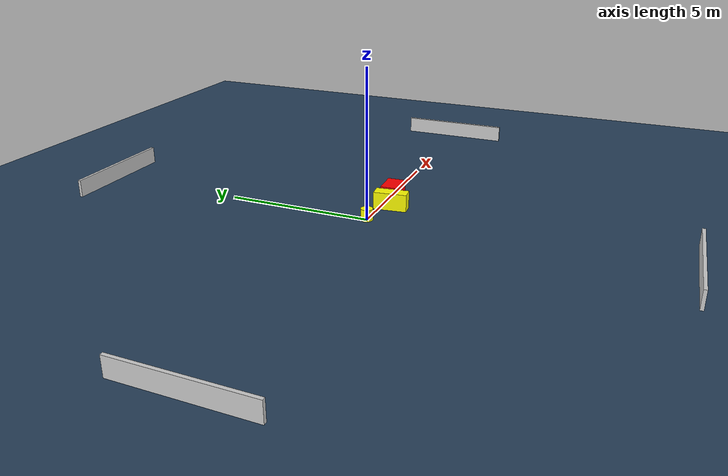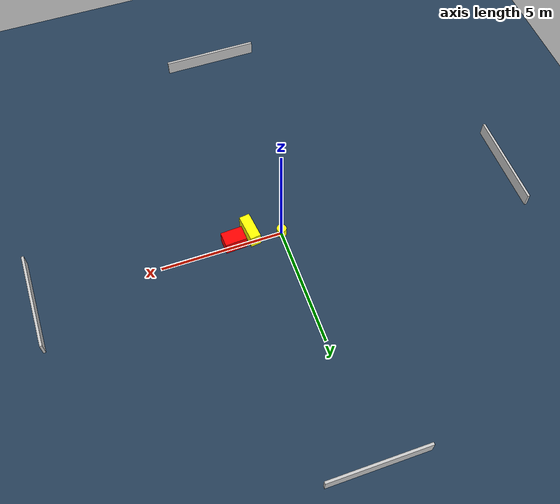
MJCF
<?xml version="1.0" ?>
<mujoco model="generated_environment">
  <option timestep="0.01" integrator="RK4" cone="elliptic"/>
  <default>
    <geom density="1"/>
  </default>
  <asset>
    <texture builtin="gradient" height="3072" name="skybox" rgb1="0.3 0.5 0.7" rgb2="0 0 0" type="skybox" width="512"/>
    <texture builtin="checker" height="300" name="groundplane" rgb1="0.2 0.3 0.4" rgb2="0.1 0.2 0.3" type="2d" width="300"/>
    <material name="groundplane" reflectance="0.2" texrepeat="5 5" texture="groundplane"/>
  </asset>
  <worldbody>
    <light dir="0 0 -1" directional="true" pos="0 0 1.5"/>
    <geom condim="3" friction="0.5 0.005 0.001" material="groundplane" name="floor" pos="0 0 0" size="0 0 0.05" type="plane"/>
    <body name="walls">
      <geom name="wall_1" condim="4" pos="-10.0 0.0 0.3" rgba="0.800000011920929 0.800000011920929 0.800000011920929 1.0" size="0.05 2.0 0.3" type="box"/>
      <geom name="wall_2" condim="4" pos="10.0 0.0 0.3" rgba="0.800000011920929 0.800000011920929 0.800000011920929 1.0" size="0.05 2.0 0.3" type="box"/>
      <geom name="wall_3" condim="4" pos="0.0 -10.0 0.3" rgba="0.800000011920929 0.800000011920929 0.800000011920929 1.0" size="2.0 0.05 0.3" type="box"/>
      <geom name="wall_4" condim="4" pos="0.0 10.0 0.3" rgba="0.800000011920929 0.800000011920929 0.800000011920929 1.0" size="2.0 0.05 0.3" type="box"/>
    </body>
    <body name="robot">
      <joint name="joint_x" type="slide" pos="0 0 0" axis="1 0 0"/>
      <joint name="joint_y" type="slide" pos="0 0 0" axis="0 1 0"/>
      <geom name="robot" type="cylinder" pos="0.0 0.0 0.2" size="0.2 0.2 0.0" mass="5.0" friction="1.0 0.005 0.0001" condim="4" rgba="1.0 1.0 0.0 1.0"/>
    </body>
    <body name="obstacle_1_movable">
      <geom name="obstacle_1_movable" condim="4" pos="1.205662499269218 -0.3833873166526087 0.3" euler="0 0 6.7174475309369885" friction="0.0 0.005 0.001" rgba="1.0 1.0 0.0 1.0" size="0.21889285412150433 0.5600282942594972 0.3" type="box" mass="0.1"/>
      <joint type="free"/>
    </body>
    <body name="obstacle_2_static">
      <geom name="obstacle_2_static" condim="4" pos="1.9515810788259675 -0.16674412545855347 0.3" euler="0 0 2.8757155152355107" friction="0.0 0.005 0.001" rgba="1.0 0.0 0.0 1.0" size="0.44222259859692903 0.30933240222766745 0.3" type="box"/>
    </body>
  </worldbody>
  <actuator>
    <motor name="actuator_x" joint="joint_x" gear="1" ctrlrange="-1 1"/>
    <motor name="actuator_y" joint="joint_y" gear="1" ctrlrange="-1 1"/>
  </actuator>
</mujoco>
